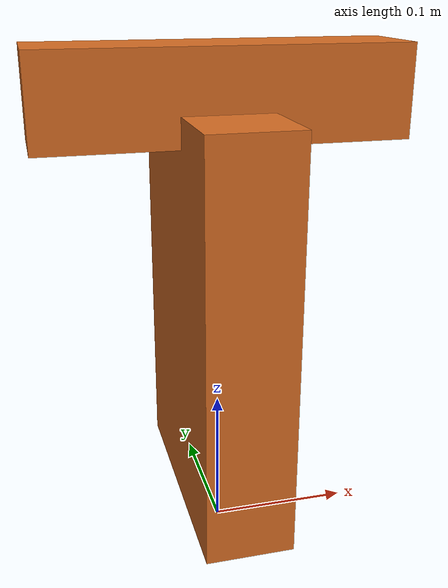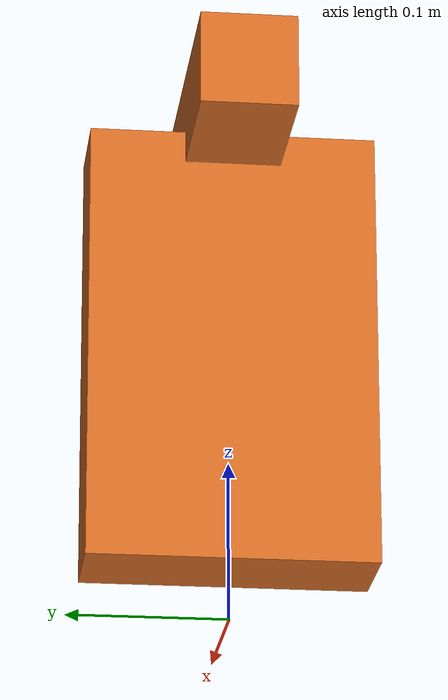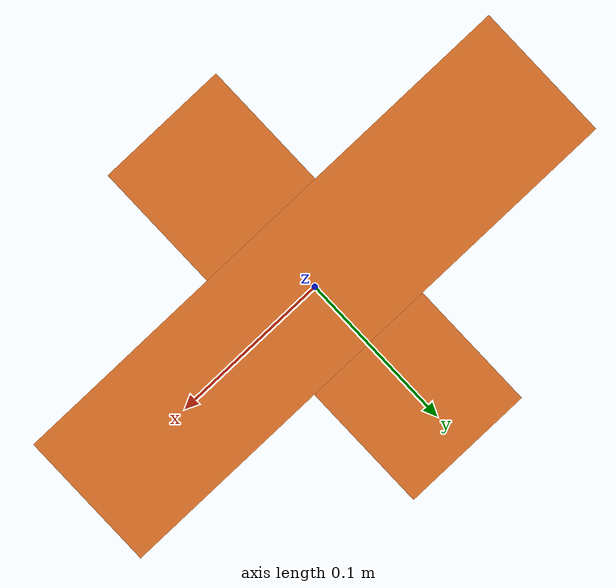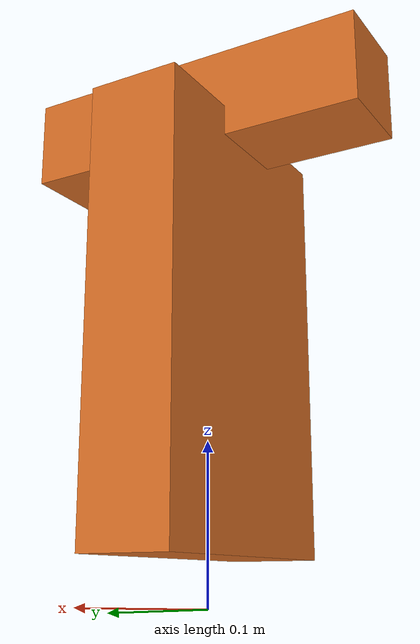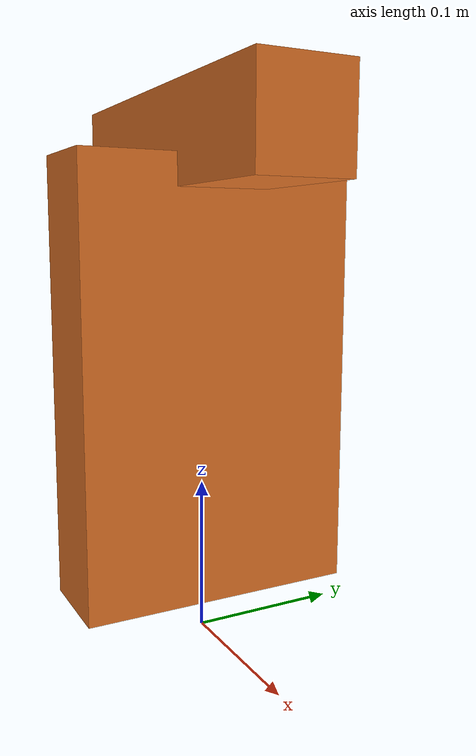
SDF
<?xml version="1.0" ?>
<sdf version="1.7">
  <model name="t_shape">
    <static>false</static>
    <pose>0 0 0 0 0 0</pose>

    <link name="body">
      <pose>0 0 0.03 0 0 0</pose>
      <inertial>
        <mass>1.2</mass>
        <inertia>
          <ixx>0.0028</ixx>
          <ixy>0.0</ixy>
          <ixz>0.0</ixz>
          <iyy>0.0052</iyy>
          <iyz>0.0</iyz>
          <izz>0.0061</izz>
        </inertia>
      </inertial>

      <collision name="stem_collision">
        <pose>0 0 0.14 0 0 0</pose>
        <geometry>
          <box>
            <size>0.06 0.18 0.28</size>
          </box>
        </geometry>
        <surface>
          <friction>
            <ode>
              <mu>0.75</mu>
              <mu2>0.75</mu2>
            </ode>
          </friction>
          <bounce>
            <restitution_coefficient>0.02</restitution_coefficient>
          </bounce>
        </surface>
      </collision>

      <collision name="topbar_collision">
        <pose>0 0 0.29 0 0 0</pose>
        <geometry>
          <box>
            <size>0.24 0.06 0.06</size>
          </box>
        </geometry>
        <surface>
          <friction>
            <ode>
              <mu>0.75</mu>
              <mu2>0.75</mu2>
            </ode>
          </friction>
          <bounce>
            <restitution_coefficient>0.02</restitution_coefficient>
          </bounce>
        </surface>
      </collision>

      <visual name="stem_visual">
        <pose>0 0 0.14 0 0 0</pose>
        <geometry>
          <box>
            <size>0.06 0.18 0.28</size>
          </box>
        </geometry>
        <material>
          <ambient>0.83 0.42 0.14 1.0</ambient>
          <diffuse>0.83 0.42 0.14 1.0</diffuse>
        </material>
      </visual>

      <visual name="topbar_visual">
        <pose>0 0 0.29 0 0 0</pose>
        <geometry>
          <box>
            <size>0.24 0.06 0.06</size>
          </box>
        </geometry>
        <material>
          <ambient>0.83 0.42 0.14 1.0</ambient>
          <diffuse>0.83 0.42 0.14 1.0</diffuse>
        </material>
      </visual>
    </link>
  </model>
</sdf>
